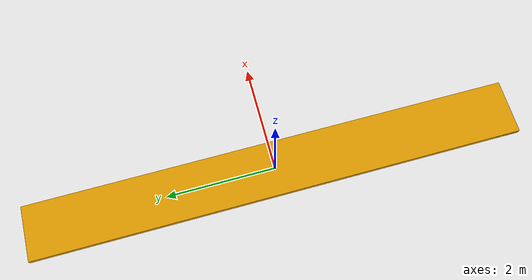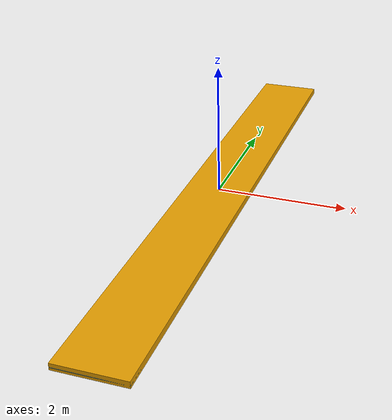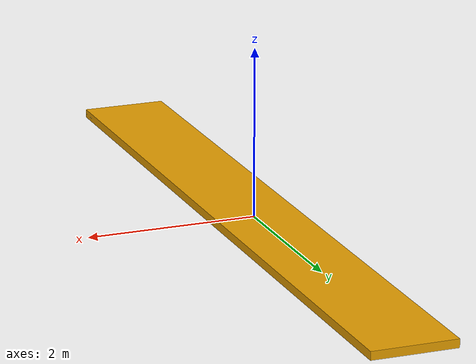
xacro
<?xml version="1.0" encoding="utf-8"?>
<robot name="belt">

  <link name="belt_base_link">
    <collision>
      <origin xyz="0 0 0" rpy="0 0 0"/>
      <geometry>
        <box size="1.0 9.0 0.1"/>
      </geometry>
    </collision>

    <visual>
      <origin xyz="0 0 0" rpy="0 0 0"/>
      <geometry>
        <box size="1.0 9.0 0.1"/>
      </geometry>
    </visual>

    <inertial>
      <origin xyz="0 0 0" rpy="0 0 0"/>
      <mass value="1"/>
      <inertia
        ixx="1.0" ixy="0.0" ixz="0.0"
        iyy="1.0" iyz="0.0"
        izz="1.0"/>
    </inertial>
  </link>

  <joint name="dbelt_joint" type="planar">
    <parent link = "belt_base_link"/>
    <child link = "dbelt" />
    <axis xyz="0 1 0"/>
    <limit effort="100" velocity="0.3" lower="0.0" upper="9.0"/>
  </joint>

  <link name="dbelt">
    <visual>
      <origin xyz="0 -4.25 -0.01" rpy="0 0 0"/>
      <geometry>
        <box size= "1.0 0.5 0.01"/>
      </geometry>
    </visual>
    <collision>
      <origin xyz="0 -4.25 -0.01" rpy="0 0 0"/>
      <geometry>
        <box size= "1.0 0.5 0.01"/>
      </geometry>
    </collision>
    <inertial>
      <origin xyz="0 -4.25 -0.01" rpy="0 0 0"/>
      <mass value="1000"/>
      <inertia
        ixx="1.0" ixy="0.0" ixz="0.0"
        iyy="1.0" iyz="0.0"
        izz="1.0"/>
    </inertial>
  </link>

  <gazebo>
    <plugin name="object_controller" filename="libgazebo_ros_planar_move.so">
      <commandTopic>belt_cmd_vel</commandTopic>
      <odometryTopic>belt_odom</odometryTopic>
      <odometryFrame>belt_odom</odometryFrame>
      <odometryRate>20.0</odometryRate>
      <robotBaseFrame>dbelt</robotBaseFrame>
    </plugin>
  </gazebo>

  <gazebo reference="belt_base_link">
    <mu1>30</mu1>
    <mu2>30</mu2>
    <kp>1000000</kp>
    <kd>1</kd>
    <static>1</static>
  </gazebo>

  <gazebo reference="dbelt">
    <mu1>30</mu1>
    <mu2>30</mu2>
    <kp>1000000</kp>
    <kd>1</kd>
  </gazebo>

</robot>
